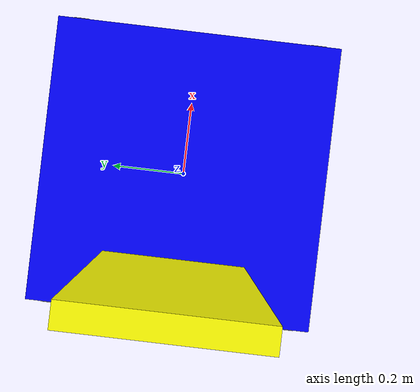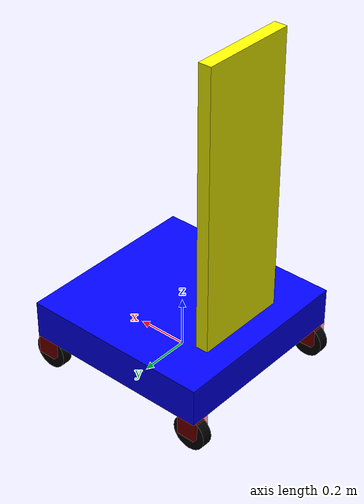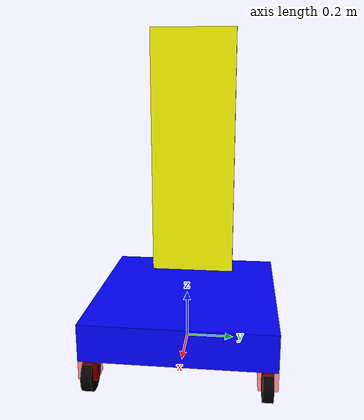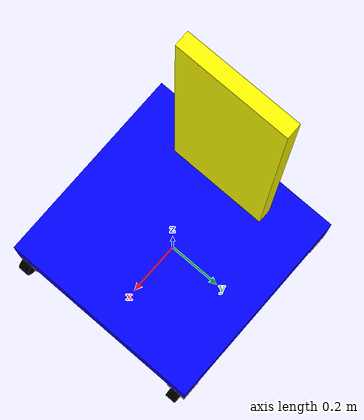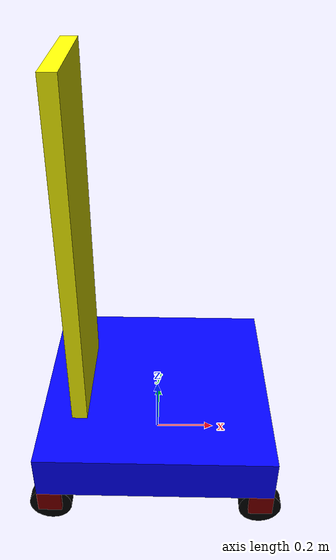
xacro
<?xml version="1.0"?>
<!-- Simple swerve base -->
<robot xmlns:xacro="http://www.ros.org/wiki/xacro" name="frcrobot">

	<!-- base width and depth -->
	<xacro:property name="base_height" value=".15" />
	<xacro:property name="base_width" value=".75" />
	<xacro:property name="base_depth" value=".75" />

	<xacro:property name="swerve_box_size" value=".075" />
	<xacro:property name="wheel_diameter" value=".0675" />
	<xacro:macro name="swerve_module" params="prefix x y">
		<link name="${prefix}_angle">
			<visual>
				<geometry>
					<box size="${swerve_box_size} ${swerve_box_size} ${swerve_box_size}"/>
				</geometry>
				<origin xyz="0 0 -${swerve_box_size / 2}" rpy="0 0 0"/>
				<material name="red">
					<color rgba="1 0 0 .5"/>
				</material>
			</visual>
		</link>

		<link name="${prefix}_speed">
			<visual>
				<geometry>
					<cylinder length=".04" radius="${wheel_diameter}"/>
				</geometry>
				<origin xyz="0 0 0" rpy="${pi/2} 0 0"/>
				<material name="black">
					<color rgba="0 0 0 1"/>
				</material>
			</visual>
		</link>
		<joint name="base_to_${prefix}_angle" type="continuous">
			<parent link="base_plate"/>
			<child link="${prefix}_angle"/>
			<origin xyz="${x} ${y} -${base_height/2}" rpy="0 0 0"/>
		</joint>
		<joint name="${prefix}_angle_to_speed" type="continuous">
			<parent link="${prefix}_angle"/>
			<child link="${prefix}_speed"/>
			<origin xyz="0 0 -${wheel_diameter}" rpy="0 0 0"/>
		</joint>
	</xacro:macro>

	<link name="base_plate">
		<visual>
			<geometry>
				<box size="${base_width} ${base_depth} ${base_height}"/>
			</geometry>
			<material name="blue">
				<color rgba="0 0 1 1"/>
			</material>
		</visual>
	</link>
	<joint name="base_plate_to_base_link" type="fixed">
		<parent link="base_link"/>
		<child link="base_plate"/>
		<origin xyz="0 0 ${wheel_diameter + base_height/2}" rpy="0 0 0"/>
	</joint>

	<xacro:property name="elevator_height" value="1.1" />
	<xacro:property name="elevator_width"  value="${base_width / 2.}" />
	<link name="elevator_plate">
		<visual>
			<geometry>
				<box size="${elevator_width} 0.05 ${elevator_height}"/>
			</geometry>
			<material name="yellow">
				<color rgba="1 1 0 1"/>
			</material>
		</visual>
	</link>
	<joint name="elevator_plate_to_base_link" type="fixed">
		<parent link="base_plate"/>
		<child link="elevator_plate"/>
		<origin xyz="-0.25 0 ${elevator_height/2 + base_height/2}" rpy="0 0 ${pi/2}"/>
	</joint>

	<xacro:swerve_module prefix="lf" x="${base_width/2 - swerve_box_size/2}" y="${base_depth/2 - swerve_box_size/2}"/>
	<xacro:swerve_module prefix="rf" x="${base_width/2 - swerve_box_size/2}" y="-${base_depth/2 - swerve_box_size/2}"/>
	<xacro:swerve_module prefix="lr" x="-${base_width/2 - swerve_box_size/2}" y="${base_depth/2 - swerve_box_size/2}"/>
	<xacro:swerve_module prefix="rr" x="-${base_width/2 - swerve_box_size/2}" y="-${base_depth/2 - swerve_box_size/2}"/>
	<xacro:include filename="$(find controller_node)/urdf/2019_compbot.urdf"/>
</robot>

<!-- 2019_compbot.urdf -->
<robot name="2019_compbot">

	<link name="base_link"/>
<gazebo>
    <plugin name="gazebo_frcrobot_plugin" filename="libgazebo_frcrobot_control.so">
        <!-- Look here for the "robot_names" array. Each entry
             in the array is the name[space] of a sim interface
             to load into gazebo
        -->
        <robotNamespace>/</robotNamespace>
        <robotParam>robot_description</robotParam>
    </plugin>
</gazebo>

</robot>
